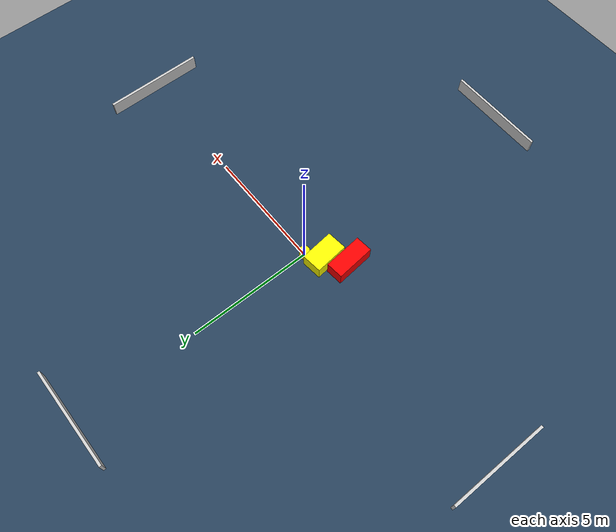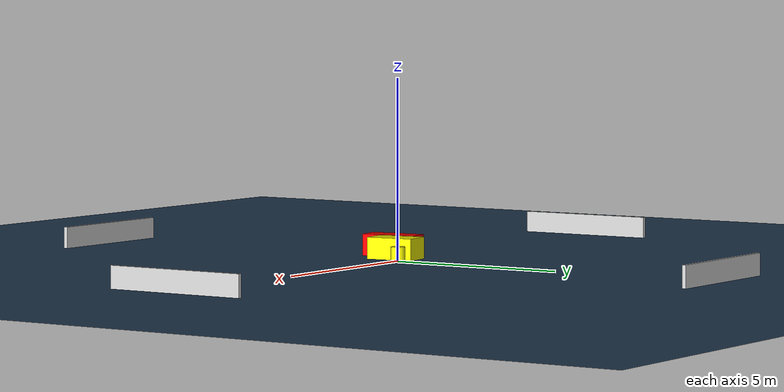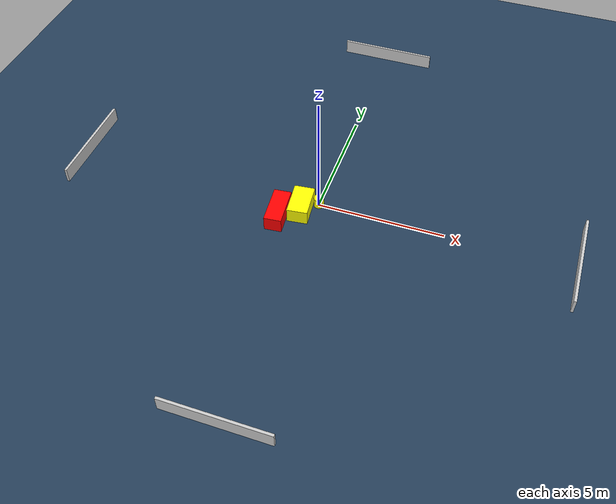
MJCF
<?xml version="1.0" ?>
<mujoco model="generated_environment">
  <option timestep="0.01" integrator="RK4" cone="elliptic"/>
  <default>
    <geom density="1"/>
  </default>
  <asset>
    <texture builtin="gradient" height="3072" name="skybox" rgb1="0.3 0.5 0.7" rgb2="0 0 0" type="skybox" width="512"/>
    <texture builtin="checker" height="300" name="groundplane" rgb1="0.2 0.3 0.4" rgb2="0.1 0.2 0.3" type="2d" width="300"/>
    <material name="groundplane" reflectance="0.2" texrepeat="5 5" texture="groundplane"/>
  </asset>
  <worldbody>
    <light dir="0 0 -1" directional="true" pos="0 0 1.5"/>
    <geom condim="3" friction="0.5 0.005 0.001" material="groundplane" name="floor" pos="0 0 0" size="0 0 0.05" type="plane"/>
    <body name="walls">
      <geom name="wall_1" condim="4" pos="-10.0 0.0 0.3" rgba="0.800000011920929 0.800000011920929 0.800000011920929 1.0" size="0.05 2.0 0.3" type="box"/>
      <geom name="wall_2" condim="4" pos="10.0 0.0 0.3" rgba="0.800000011920929 0.800000011920929 0.800000011920929 1.0" size="0.05 2.0 0.3" type="box"/>
      <geom name="wall_3" condim="4" pos="0.0 -10.0 0.3" rgba="0.800000011920929 0.800000011920929 0.800000011920929 1.0" size="2.0 0.05 0.3" type="box"/>
      <geom name="wall_4" condim="4" pos="0.0 10.0 0.3" rgba="0.800000011920929 0.800000011920929 0.800000011920929 1.0" size="2.0 0.05 0.3" type="box"/>
    </body>
    <body name="robot">
      <joint name="joint_x" type="slide" pos="0 0 0" axis="1 0 0"/>
      <joint name="joint_y" type="slide" pos="0 0 0" axis="0 1 0"/>
      <geom name="robot" type="cylinder" pos="0.0 0.0 0.2" size="0.2 0.2 0.0" mass="5.0" friction="1.0 0.005 0.0001" condim="4" rgba="1.0 1.0 0.0 1.0"/>
    </body>
    <body name="obstacle_1_movable">
      <geom name="obstacle_1_movable" condim="4" pos="-0.5793725611860044 -0.4666616653760145 0.3" euler="0 0 96.09407890416335" friction="0.0 0.005 0.001" rgba="1.0 1.0 0.0 1.0" size="0.6751395425867748 0.4030572272638559 0.3" type="box" mass="0.1"/>
      <joint type="free"/>
    </body>
    <body name="obstacle_2_static">
      <geom name="obstacle_2_static" condim="4" pos="-1.3177076710360784 -1.0456102008728918 0.3" euler="0 0 95.46447877486358" friction="0.0 0.005 0.001" rgba="1.0 0.0 0.0 1.0" size="0.7814032564343778 0.3404482261918501 0.3" type="box"/>
    </body>
  </worldbody>
  <actuator>
    <motor name="actuator_x" joint="joint_x" gear="1" ctrlrange="-1 1"/>
    <motor name="actuator_y" joint="joint_y" gear="1" ctrlrange="-1 1"/>
  </actuator>
</mujoco>
